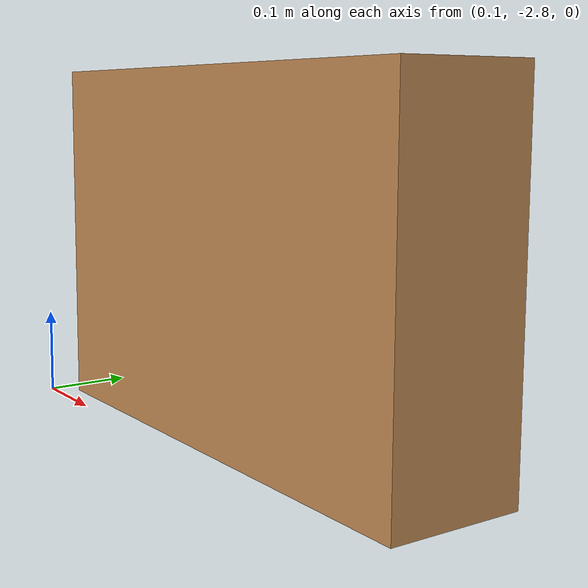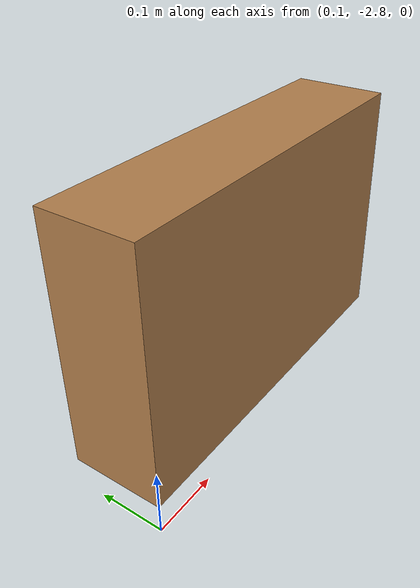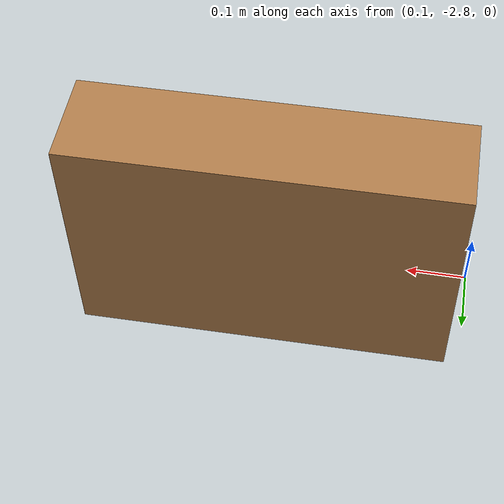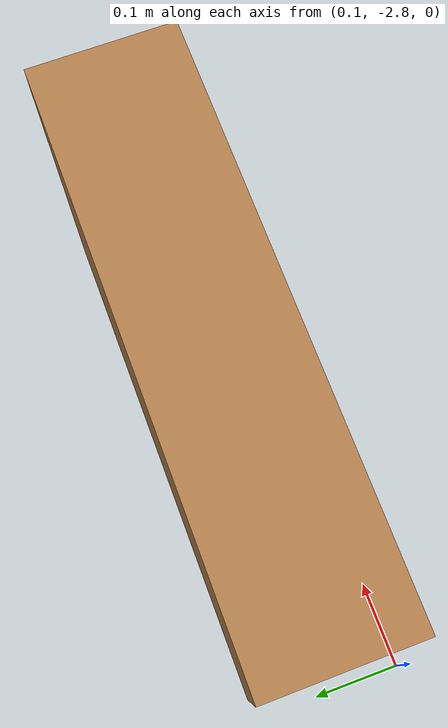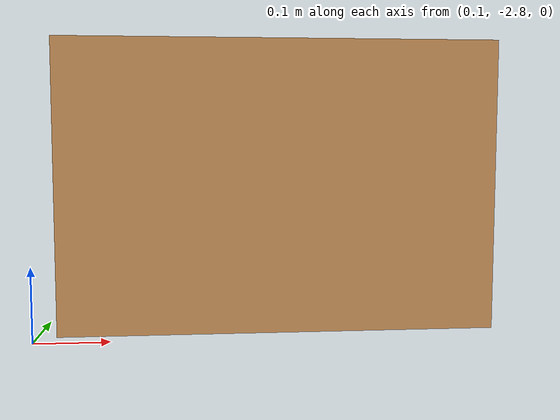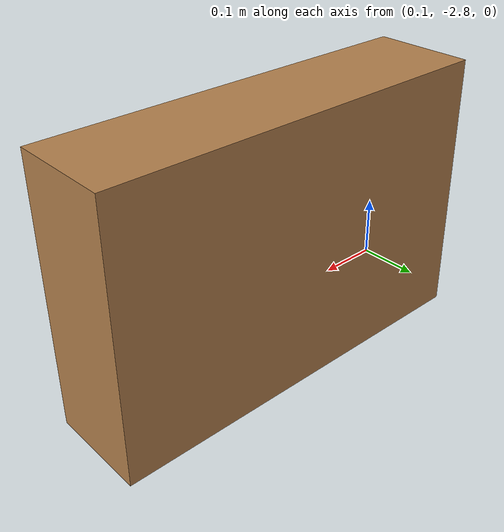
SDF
<?xml version='1.0'?>
<sdf version='1.6'>
  <model name='wall0m6'>
    <pose frame=''>0.3625 -1.3875 0 0 -0 0</pose>
    <link name='Wall_0'>
      <collision name='Wall_0_Collision'>
        <geometry>
          <box>
            <size>0.6 0.15 0.4</size>
          </box>
        </geometry>
        <pose frame=''>0 0 0.2 0 -0 0</pose>
      </collision>
      <visual name='Wall_0_Visual'>
        <pose frame=''>0 0 0.2 0 -0 0</pose>
        <geometry>
          <box>
            <size>0.6 0.15 0.4</size>
          </box>
        </geometry>
        <material>
          <script>
            <uri>file://media/materials/scripts/gazebo.material</uri>
            <name>Gazebo/Wood</name>
          </script>
          <ambient>1 1 1 1</ambient>
        </material>
        <meta>
          <layer>0</layer>
        </meta>
      </visual>
      <pose frame=''>0.0625 -1.3125 0 0 -0 3.14159</pose>
    </link>
    <static>1</static>
  </model>
</sdf>
